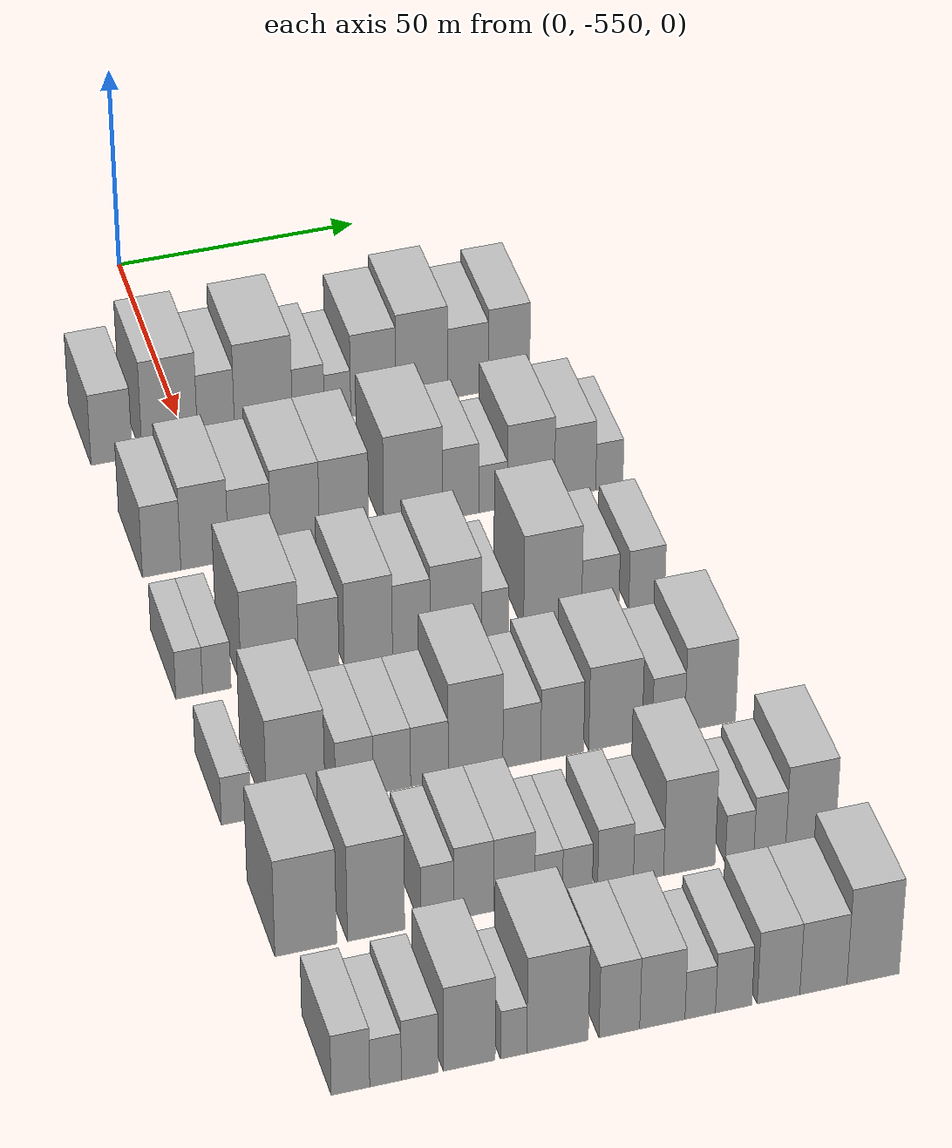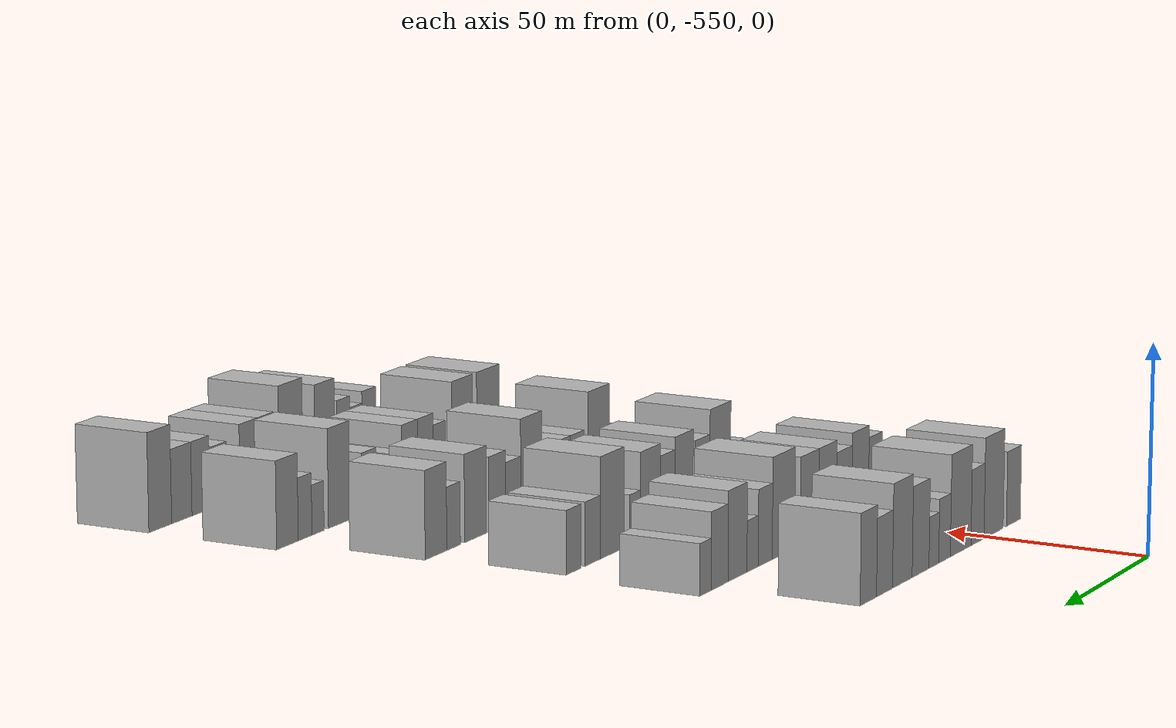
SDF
<sdf version="1.6">
 <world name="default">
  <model name="building_1">
   <static>1</static>
   <pose>50.0000 -565.8020 0 0.000000 0.000000 0.000000</pose>
   <link name="link">
    <pose>0 0 9.00 0 0 0</pose>
    <collision name="collision"><geometry><box><size>20.0000 8.3960 18.0000</size></box></geometry></collision>
    <visual name="visual">
     <cast_shadows>0</cast_shadows>
     <geometry><box><size>20.0000 8.3960 18.0000</size></box></geometry>
     <material>
      <script>
       <uri>model://HANNAS_wall/materials/scripts</uri>
       <uri>model://HANNAS_wall/materials/textures</uri>
       <name>vrc/HANNAS_wall</name>
      </script>
     </material>
    </visual>
   </link>
  </model>
  <model name="building_2">
   <static>1</static>
   <pose>50.0000 -553.9148 0 0.000000 0.000000 0.000000</pose>
   <link name="link">
    <pose>0 0 12.00 0 0 0</pose>
    <collision name="collision"><geometry><box><size>20.0000 11.3786 24.0000</size></box></geometry></collision>
    <visual name="visual">
     <cast_shadows>0</cast_shadows>
     <geometry><box><size>20.0000 11.3786 24.0000</size></box></geometry>
     <material>
      <script>
       <uri>model://HANNAS_wall/materials/scripts</uri>
       <uri>model://HANNAS_wall/materials/textures</uri>
       <name>vrc/HANNAS_wall</name>
      </script>
     </material>
    </visual>
   </link>
  </model>
  <model name="building_3">
   <static>1</static>
   <pose>50.0000 -544.4185 0 0.000000 0.000000 0.000000</pose>
   <link name="link">
    <pose>0 0 9.00 0 0 0</pose>
    <collision name="collision"><geometry><box><size>20.0000 7.6140 18.0000</size></box></geometry></collision>
    <visual name="visual">
     <cast_shadows>0</cast_shadows>
     <geometry><box><size>20.0000 7.6140 18.0000</size></box></geometry>
     <material>
      <script>
       <uri>model://HANNAS_wall/materials/scripts</uri>
       <uri>model://HANNAS_wall/materials/textures</uri>
       <name>vrc/HANNAS_wall</name>
      </script>
     </material>
    </visual>
   </link>
  </model>
  <model name="building_4">
   <static>1</static>
   <pose>50.0000 -534.6611 0 0.000000 0.000000 0.000000</pose>
   <link name="link">
    <pose>0 0 12.00 0 0 0</pose>
    <collision name="collision"><geometry><box><size>20.0000 11.9007 24.0000</size></box></geometry></collision>
    <visual name="visual">
     <cast_shadows>0</cast_shadows>
     <geometry><box><size>20.0000 11.9007 24.0000</size></box></geometry>
     <material>
      <script>
       <uri>model://HANNAS_wall/materials/scripts</uri>
       <uri>model://HANNAS_wall/materials/textures</uri>
       <name>vrc/HANNAS_wall</name>
      </script>
     </material>
    </visual>
   </link>
  </model>
  <model name="building_5">
   <static>1</static>
   <pose>50.0000 -525.4273 0 0.000000 0.000000 0.000000</pose>
   <link name="link">
    <pose>0 0 7.50 0 0 0</pose>
    <collision name="collision"><geometry><box><size>20.0000 6.5668 15.0000</size></box></geometry></collision>
    <visual name="visual">
     <cast_shadows>0</cast_shadows>
     <geometry><box><size>20.0000 6.5668 15.0000</size></box></geometry>
     <material>
      <script>
       <uri>model://HANNAS_wall/materials/scripts</uri>
       <uri>model://HANNAS_wall/materials/textures</uri>
       <name>vrc/HANNAS_wall</name>
      </script>
     </material>
    </visual>
   </link>
  </model>
  <model name="building_6">
   <static>1</static>
   <pose>50.0000 -519.4033 0 0.000000 0.000000 0.000000</pose>
   <link name="link">
    <pose>0 0 6.00 0 0 0</pose>
    <collision name="collision"><geometry><box><size>20.0000 5.4813 12.0000</size></box></geometry></collision>
    <visual name="visual">
     <cast_shadows>0</cast_shadows>
     <geometry><box><size>20.0000 5.4813 12.0000</size></box></geometry>
     <material>
      <script>
       <uri>model://HANNAS_wall/materials/scripts</uri>
       <uri>model://HANNAS_wall/materials/textures</uri>
       <name>vrc/HANNAS_wall</name>
      </script>
     </material>
    </visual>
   </link>
  </model>
  <model name="building_7">
   <static>1</static>
   <pose>50.0000 -511.9810 0 0.000000 0.000000 0.000000</pose>
   <link name="link">
    <pose>0 0 10.50 0 0 0</pose>
    <collision name="collision"><geometry><box><size>20.0000 9.3633 21.0000</size></box></geometry></collision>
    <visual name="visual">
     <cast_shadows>0</cast_shadows>
     <geometry><box><size>20.0000 9.3633 21.0000</size></box></geometry>
     <material>
      <script>
       <uri>model://HANNAS_wall/materials/scripts</uri>
       <uri>model://HANNAS_wall/materials/textures</uri>
       <name>vrc/HANNAS_wall</name>
      </script>
     </material>
    </visual>
   </link>
  </model>
  <model name="building_8">
   <static>1</static>
   <pose>50.0000 -501.9242 0 0.000000 0.000000 0.000000</pose>
   <link name="link">
    <pose>0 0 12.00 0 0 0</pose>
    <collision name="collision"><geometry><box><size>20.0000 10.7504 24.0000</size></box></geometry></collision>
    <visual name="visual">
     <cast_shadows>0</cast_shadows>
     <geometry><box><size>20.0000 10.7504 24.0000</size></box></geometry>
     <material>
      <script>
       <uri>model://HANNAS_wall/materials/scripts</uri>
       <uri>model://HANNAS_wall/materials/textures</uri>
       <name>vrc/HANNAS_wall</name>
      </script>
     </material>
    </visual>
   </link>
  </model>
  <model name="building_9">
   <static>1</static>
   <pose>50.0000 -492.2639 0 0.000000 0.000000 0.000000</pose>
   <link name="link">
    <pose>0 0 9.00 0 0 0</pose>
    <collision name="collision"><geometry><box><size>20.0000 8.5702 18.0000</size></box></geometry></collision>
    <visual name="visual">
     <cast_shadows>0</cast_shadows>
     <geometry><box><size>20.0000 8.5702 18.0000</size></box></geometry>
     <material>
      <script>
       <uri>model://HANNAS_wall/materials/scripts</uri>
       <uri>model://HANNAS_wall/materials/textures</uri>
       <name>vrc/HANNAS_wall</name>
      </script>
     </material>
    </visual>
   </link>
  </model>
  <model name="building_10">
   <static>1</static>
   <pose>50.0000 -483.6536 0 0.000000 0.000000 0.000000</pose>
   <link name="link">
    <pose>0 0 10.50 0 0 0</pose>
    <collision name="collision"><geometry><box><size>20.0000 8.6506 21.0000</size></box></geometry></collision>
    <visual name="visual">
     <cast_shadows>0</cast_shadows>
     <geometry><box><size>20.0000 8.6506 21.0000</size></box></geometry>
     <material>
      <script>
       <uri>model://HANNAS_wall/materials/scripts</uri>
       <uri>model://HANNAS_wall/materials/textures</uri>
       <name>vrc/HANNAS_wall</name>
      </script>
     </material>
    </visual>
   </link>
  </model>
  <model name="building_125">
   <static>1</static>
   <pose>85.0000 -564.1710 0 0.000000 0.000000 0.000000</pose>
   <link name="link">
    <pose>0 0 9.00 0 0 0</pose>
    <collision name="collision"><geometry><box><size>20.0000 7.6581 18.0000</size></box></geometry></collision>
    <visual name="visual">
     <cast_shadows>0</cast_shadows>
     <geometry><box><size>20.0000 7.6581 18.0000</size></box></geometry>
     <material>
      <script>
       <uri>model://HANNAS_wall/materials/scripts</uri>
       <uri>model://HANNAS_wall/materials/textures</uri>
       <name>vrc/HANNAS_wall</name>
      </script>
     </material>
    </visual>
   </link>
  </model>
  <model name="building_126">
   <static>1</static>
   <pose>85.0000 -555.5886 0 0.000000 0.000000 0.000000</pose>
   <link name="link">
    <pose>0 0 10.50 0 0 0</pose>
    <collision name="collision"><geometry><box><size>20.0000 9.5065 21.0000</size></box></geometry></collision>
    <visual name="visual">
     <cast_shadows>0</cast_shadows>
     <geometry><box><size>20.0000 9.5065 21.0000</size></box></geometry>
     <material>
      <script>
       <uri>model://HANNAS_wall/materials/scripts</uri>
       <uri>model://HANNAS_wall/materials/textures</uri>
       <name>vrc/HANNAS_wall</name>
      </script>
     </material>
    </visual>
   </link>
  </model>
  <model name="building_127">
   <static>1</static>
   <pose>85.0000 -546.5594 0 0.000000 0.000000 0.000000</pose>
   <link name="link">
    <pose>0 0 9.00 0 0 0</pose>
    <collision name="collision"><geometry><box><size>20.0000 8.5520 18.0000</size></box></geometry></collision>
    <visual name="visual">
     <cast_shadows>0</cast_shadows>
     <geometry><box><size>20.0000 8.5520 18.0000</size></box></geometry>
     <material>
      <script>
       <uri>model://HANNAS_wall/materials/scripts</uri>
       <uri>model://HANNAS_wall/materials/textures</uri>
       <name>vrc/HANNAS_wall</name>
      </script>
     </material>
    </visual>
   </link>
  </model>
  <model name="building_128">
   <static>1</static>
   <pose>85.0000 -537.4006 0 0.000000 0.000000 0.000000</pose>
   <link name="link">
    <pose>0 0 10.50 0 0 0</pose>
    <collision name="collision"><geometry><box><size>20.0000 9.7656 21.0000</size></box></geometry></collision>
    <visual name="visual">
     <cast_shadows>0</cast_shadows>
     <geometry><box><size>20.0000 9.7656 21.0000</size></box></geometry>
     <material>
      <script>
       <uri>model://HANNAS_wall/materials/scripts</uri>
       <uri>model://HANNAS_wall/materials/textures</uri>
       <name>vrc/HANNAS_wall</name>
      </script>
     </material>
    </visual>
   </link>
  </model>
  <model name="building_129">
   <static>1</static>
   <pose>85.0000 -527.5394 0 0.000000 0.000000 0.000000</pose>
   <link name="link">
    <pose>0 0 10.50 0 0 0</pose>
    <collision name="collision"><geometry><box><size>20.0000 9.9567 21.0000</size></box></geometry></collision>
    <visual name="visual">
     <cast_shadows>0</cast_shadows>
     <geometry><box><size>20.0000 9.9567 21.0000</size></box></geometry>
     <material>
      <script>
       <uri>model://HANNAS_wall/materials/scripts</uri>
       <uri>model://HANNAS_wall/materials/textures</uri>
       <name>vrc/HANNAS_wall</name>
      </script>
     </material>
    </visual>
   </link>
  </model>
  <model name="building_130">
   <static>1</static>
   <pose>85.0000 -513.5784 0 0.000000 0.000000 0.000000</pose>
   <link name="link">
    <pose>0 0 12.00 0 0 0</pose>
    <collision name="collision"><geometry><box><size>20.0000 11.9653 24.0000</size></box></geometry></collision>
    <visual name="visual">
     <cast_shadows>0</cast_shadows>
     <geometry><box><size>20.0000 11.9653 24.0000</size></box></geometry>
     <material>
      <script>
       <uri>model://HANNAS_wall/materials/scripts</uri>
       <uri>model://HANNAS_wall/materials/textures</uri>
       <name>vrc/HANNAS_wall</name>
      </script>
     </material>
    </visual>
   </link>
  </model>
  <model name="building_131">
   <static>1</static>
   <pose>85.0000 -503.9289 0 0.000000 0.000000 0.000000</pose>
   <link name="link">
    <pose>0 0 9.00 0 0 0</pose>
    <collision name="collision"><geometry><box><size>20.0000 7.3338 18.0000</size></box></geometry></collision>
    <visual name="visual">
     <cast_shadows>0</cast_shadows>
     <geometry><box><size>20.0000 7.3338 18.0000</size></box></geometry>
     <material>
      <script>
       <uri>model://HANNAS_wall/materials/scripts</uri>
       <uri>model://HANNAS_wall/materials/textures</uri>
       <name>vrc/HANNAS_wall</name>
      </script>
     </material>
    </visual>
   </link>
  </model>
  <model name="building_132">
   <static>1</static>
   <pose>85.0000 -497.3384 0 0.000000 0.000000 0.000000</pose>
   <link name="link">
    <pose>0 0 6.00 0 0 0</pose>
    <collision name="collision"><geometry><box><size>20.0000 5.8474 12.0000</size></box></geometry></collision>
    <visual name="visual">
     <cast_shadows>0</cast_shadows>
     <geometry><box><size>20.0000 5.8474 12.0000</size></box></geometry>
     <material>
      <script>
       <uri>model://HANNAS_wall/materials/scripts</uri>
       <uri>model://HANNAS_wall/materials/textures</uri>
       <name>vrc/HANNAS_wall</name>
      </script>
     </material>
    </visual>
   </link>
  </model>
  <model name="building_133">
   <static>1</static>
   <pose>85.0000 -489.5734 0 0.000000 0.000000 0.000000</pose>
   <link name="link">
    <pose>0 0 10.50 0 0 0</pose>
    <collision name="collision"><geometry><box><size>20.0000 9.6825 21.0000</size></box></geometry></collision>
    <visual name="visual">
     <cast_shadows>0</cast_shadows>
     <geometry><box><size>20.0000 9.6825 21.0000</size></box></geometry>
     <material>
      <script>
       <uri>model://HANNAS_wall/materials/scripts</uri>
       <uri>model://HANNAS_wall/materials/textures</uri>
       <name>vrc/HANNAS_wall</name>
      </script>
     </material>
    </visual>
   </link>
  </model>
  <model name="building_134">
   <static>1</static>
   <pose>85.0000 -480.4930 0 0.000000 0.000000 0.000000</pose>
   <link name="link">
    <pose>0 0 9.00 0 0 0</pose>
    <collision name="collision"><geometry><box><size>20.0000 8.4784 18.0000</size></box></geometry></collision>
    <visual name="visual">
     <cast_shadows>0</cast_shadows>
     <geometry><box><size>20.0000 8.4784 18.0000</size></box></geometry>
     <material>
      <script>
       <uri>model://HANNAS_wall/materials/scripts</uri>
       <uri>model://HANNAS_wall/materials/textures</uri>
       <name>vrc/HANNAS_wall</name>
      </script>
     </material>
    </visual>
   </link>
  </model>
  <model name="building_135">
   <static>1</static>
   <pose>85.0000 -473.4483 0 0.000000 0.000000 0.000000</pose>
   <link name="link">
    <pose>0 0 6.00 0 0 0</pose>
    <collision name="collision"><geometry><box><size>20.0000 5.6111 12.0000</size></box></geometry></collision>
    <visual name="visual">
     <cast_shadows>0</cast_shadows>
     <geometry><box><size>20.0000 5.6111 12.0000</size></box></geometry>
     <material>
      <script>
       <uri>model://HANNAS_wall/materials/scripts</uri>
       <uri>model://HANNAS_wall/materials/textures</uri>
       <name>vrc/HANNAS_wall</name>
      </script>
     </material>
    </visual>
   </link>
  </model>
  <model name="building_252">
   <static>1</static>
   <pose>120.0000 -567.3957 0 0.000000 0.000000 0.000000</pose>
   <link name="link">
    <pose>0 0 6.00 0 0 0</pose>
    <collision name="collision"><geometry><box><size>20.0000 5.2086 12.0000</size></box></geometry></collision>
    <visual name="visual">
     <cast_shadows>0</cast_shadows>
     <geometry><box><size>20.0000 5.2086 12.0000</size></box></geometry>
     <material>
      <script>
       <uri>model://HANNAS_wall/materials/scripts</uri>
       <uri>model://HANNAS_wall/materials/textures</uri>
       <name>vrc/HANNAS_wall</name>
      </script>
     </material>
    </visual>
   </link>
  </model>
  <model name="building_253">
   <static>1</static>
   <pose>120.0000 -562.0153 0 0.000000 0.000000 0.000000</pose>
   <link name="link">
    <pose>0 0 6.00 0 0 0</pose>
    <collision name="collision"><geometry><box><size>20.0000 5.5522 12.0000</size></box></geometry></collision>
    <visual name="visual">
     <cast_shadows>0</cast_shadows>
     <geometry><box><size>20.0000 5.5522 12.0000</size></box></geometry>
     <material>
      <script>
       <uri>model://HANNAS_wall/materials/scripts</uri>
       <uri>model://HANNAS_wall/materials/textures</uri>
       <name>vrc/HANNAS_wall</name>
      </script>
     </material>
    </visual>
   </link>
  </model>
  <model name="building_254">
   <static>1</static>
   <pose>120.0000 -551.6204 0 0.000000 0.000000 0.000000</pose>
   <link name="link">
    <pose>0 0 12.00 0 0 0</pose>
    <collision name="collision"><geometry><box><size>20.0000 11.2376 24.0000</size></box></geometry></collision>
    <visual name="visual">
     <cast_shadows>0</cast_shadows>
     <geometry><box><size>20.0000 11.2376 24.0000</size></box></geometry>
     <material>
      <script>
       <uri>model://HANNAS_wall/materials/scripts</uri>
       <uri>model://HANNAS_wall/materials/textures</uri>
       <name>vrc/HANNAS_wall</name>
      </script>
     </material>
    </visual>
   </link>
  </model>
  <model name="building_255">
   <static>1</static>
   <pose>120.0000 -542.0420 0 0.000000 0.000000 0.000000</pose>
   <link name="link">
    <pose>0 0 9.00 0 0 0</pose>
    <collision name="collision"><geometry><box><size>20.0000 7.9191 18.0000</size></box></geometry></collision>
    <visual name="visual">
     <cast_shadows>0</cast_shadows>
     <geometry><box><size>20.0000 7.9191 18.0000</size></box></geometry>
     <material>
      <script>
       <uri>model://HANNAS_wall/materials/scripts</uri>
       <uri>model://HANNAS_wall/materials/textures</uri>
       <name>vrc/HANNAS_wall</name>
      </script>
     </material>
    </visual>
   </link>
  </model>
  <model name="building_256">
   <static>1</static>
   <pose>120.0000 -532.3242 0 0.000000 0.000000 0.000000</pose>
   <link name="link">
    <pose>0 0 10.50 0 0 0</pose>
    <collision name="collision"><geometry><box><size>20.0000 9.5166 21.0000</size></box></geometry></collision>
    <visual name="visual">
     <cast_shadows>0</cast_shadows>
     <geometry><box><size>20.0000 9.5166 21.0000</size></box></geometry>
     <material>
      <script>
       <uri>model://HANNAS_wall/materials/scripts</uri>
       <uri>model://HANNAS_wall/materials/textures</uri>
       <name>vrc/HANNAS_wall</name>
      </script>
     </material>
    </visual>
   </link>
  </model>
  <model name="building_257">
   <static>1</static>
   <pose>120.0000 -523.8500 0 0.000000 0.000000 0.000000</pose>
   <link name="link">
    <pose>0 0 9.00 0 0 0</pose>
    <collision name="collision"><geometry><box><size>20.0000 7.4318 18.0000</size></box></geometry></collision>
    <visual name="visual">
     <cast_shadows>0</cast_shadows>
     <geometry><box><size>20.0000 7.4318 18.0000</size></box></geometry>
     <material>
      <script>
       <uri>model://HANNAS_wall/materials/scripts</uri>
       <uri>model://HANNAS_wall/materials/textures</uri>
       <name>vrc/HANNAS_wall</name>
      </script>
     </material>
    </visual>
   </link>
  </model>
  <model name="building_258">
   <static>1</static>
   <pose>120.0000 -515.0436 0 0.000000 0.000000 0.000000</pose>
   <link name="link">
    <pose>0 0 10.50 0 0 0</pose>
    <collision name="collision"><geometry><box><size>20.0000 10.1809 21.0000</size></box></geometry></collision>
    <visual name="visual">
     <cast_shadows>0</cast_shadows>
     <geometry><box><size>20.0000 10.1809 21.0000</size></box></geometry>
     <material>
      <script>
       <uri>model://HANNAS_wall/materials/scripts</uri>
       <uri>model://HANNAS_wall/materials/textures</uri>
       <name>vrc/HANNAS_wall</name>
      </script>
     </material>
    </visual>
   </link>
  </model>
  <model name="building_259">
   <static>1</static>
   <pose>120.0000 -507.2481 0 0.000000 0.000000 0.000000</pose>
   <link name="link">
    <pose>0 0 6.00 0 0 0</pose>
    <collision name="collision"><geometry><box><size>20.0000 5.4101 12.0000</size></box></geometry></collision>
    <visual name="visual">
     <cast_shadows>0</cast_shadows>
     <geometry><box><size>20.0000 5.4101 12.0000</size></box></geometry>
     <material>
      <script>
       <uri>model://HANNAS_wall/materials/scripts</uri>
       <uri>model://HANNAS_wall/materials/textures</uri>
       <name>vrc/HANNAS_wall</name>
      </script>
     </material>
    </visual>
   </link>
  </model>
  <model name="building_260">
   <static>1</static>
   <pose>120.0000 -495.7571 0 0.000000 0.000000 0.000000</pose>
   <link name="link">
    <pose>0 0 12.00 0 0 0</pose>
    <collision name="collision"><geometry><box><size>20.0000 11.5719 24.0000</size></box></geometry></collision>
    <visual name="visual">
     <cast_shadows>0</cast_shadows>
     <geometry><box><size>20.0000 11.5719 24.0000</size></box></geometry>
     <material>
      <script>
       <uri>model://HANNAS_wall/materials/scripts</uri>
       <uri>model://HANNAS_wall/materials/textures</uri>
       <name>vrc/HANNAS_wall</name>
      </script>
     </material>
    </visual>
   </link>
  </model>
  <model name="building_261">
   <static>1</static>
   <pose>120.0000 -486.2264 0 0.000000 0.000000 0.000000</pose>
   <link name="link">
    <pose>0 0 7.50 0 0 0</pose>
    <collision name="collision"><geometry><box><size>20.0000 7.4894 15.0000</size></box></geometry></collision>
    <visual name="visual">
     <cast_shadows>0</cast_shadows>
     <geometry><box><size>20.0000 7.4894 15.0000</size></box></geometry>
     <material>
      <script>
       <uri>model://HANNAS_wall/materials/scripts</uri>
       <uri>model://HANNAS_wall/materials/textures</uri>
       <name>vrc/HANNAS_wall</name>
      </script>
     </material>
    </visual>
   </link>
  </model>
  <model name="building_262">
   <static>1</static>
   <pose>120.0000 -476.8883 0 0.000000 0.000000 0.000000</pose>
   <link name="link">
    <pose>0 0 7.50 0 0 0</pose>
    <collision name="collision"><geometry><box><size>20.0000 7.1868 15.0000</size></box></geometry></collision>
    <visual name="visual">
     <cast_shadows>0</cast_shadows>
     <geometry><box><size>20.0000 7.1868 15.0000</size></box></geometry>
     <material>
      <script>
       <uri>model://HANNAS_wall/materials/scripts</uri>
       <uri>model://HANNAS_wall/materials/textures</uri>
       <name>vrc/HANNAS_wall</name>
      </script>
     </material>
    </visual>
   </link>
  </model>
  <model name="building_374">
   <static>1</static>
   <pose>155.0000 -567.1918 0 0.000000 0.000000 0.000000</pose>
   <link name="link">
    <pose>0 0 6.00 0 0 0</pose>
    <collision name="collision"><geometry><box><size>20.0000 5.6164 12.0000</size></box></geometry></collision>
    <visual name="visual">
     <cast_shadows>0</cast_shadows>
     <geometry><box><size>20.0000 5.6164 12.0000</size></box></geometry>
     <material>
      <script>
       <uri>model://HANNAS_wall/materials/scripts</uri>
       <uri>model://HANNAS_wall/materials/textures</uri>
       <name>vrc/HANNAS_wall</name>
      </script>
     </material>
    </visual>
   </link>
  </model>
  <model name="building_375">
   <static>1</static>
   <pose>155.0000 -555.8159 0 0.000000 0.000000 0.000000</pose>
   <link name="link">
    <pose>0 0 12.00 0 0 0</pose>
    <collision name="collision"><geometry><box><size>20.0000 11.1355 24.0000</size></box></geometry></collision>
    <visual name="visual">
     <cast_shadows>0</cast_shadows>
     <geometry><box><size>20.0000 11.1355 24.0000</size></box></geometry>
     <material>
      <script>
       <uri>model://HANNAS_wall/materials/scripts</uri>
       <uri>model://HANNAS_wall/materials/textures</uri>
       <name>vrc/HANNAS_wall</name>
      </script>
     </material>
    </visual>
   </link>
  </model>
  <model name="building_376">
   <static>1</static>
   <pose>155.0000 -544.6604 0 0.000000 0.000000 0.000000</pose>
   <link name="link">
    <pose>0 0 7.50 0 0 0</pose>
    <collision name="collision"><geometry><box><size>20.0000 7.1755 15.0000</size></box></geometry></collision>
    <visual name="visual">
     <cast_shadows>0</cast_shadows>
     <geometry><box><size>20.0000 7.1755 15.0000</size></box></geometry>
     <material>
      <script>
       <uri>model://HANNAS_wall/materials/scripts</uri>
       <uri>model://HANNAS_wall/materials/textures</uri>
       <name>vrc/HANNAS_wall</name>
      </script>
     </material>
    </visual>
   </link>
  </model>
  <model name="building_377">
   <static>1</static>
   <pose>155.0000 -537.4642 0 0.000000 0.000000 0.000000</pose>
   <link name="link">
    <pose>0 0 7.50 0 0 0</pose>
    <collision name="collision"><geometry><box><size>20.0000 7.2169 15.0000</size></box></geometry></collision>
    <visual name="visual">
     <cast_shadows>0</cast_shadows>
     <geometry><box><size>20.0000 7.2169 15.0000</size></box></geometry>
     <material>
      <script>
       <uri>model://HANNAS_wall/materials/scripts</uri>
       <uri>model://HANNAS_wall/materials/textures</uri>
       <name>vrc/HANNAS_wall</name>
      </script>
     </material>
    </visual>
   </link>
  </model>
  <model name="building_378">
   <static>1</static>
   <pose>155.0000 -530.2417 0 0.000000 0.000000 0.000000</pose>
   <link name="link">
    <pose>0 0 7.50 0 0 0</pose>
    <collision name="collision"><geometry><box><size>20.0000 7.2280 15.0000</size></box></geometry></collision>
    <visual name="visual">
     <cast_shadows>0</cast_shadows>
     <geometry><box><size>20.0000 7.2280 15.0000</size></box></geometry>
     <material>
      <script>
       <uri>model://HANNAS_wall/materials/scripts</uri>
       <uri>model://HANNAS_wall/materials/textures</uri>
       <name>vrc/HANNAS_wall</name>
      </script>
     </material>
    </visual>
   </link>
  </model>
  <model name="building_379">
   <static>1</static>
   <pose>155.0000 -521.3453 0 0.000000 0.000000 0.000000</pose>
   <link name="link">
    <pose>0 0 12.00 0 0 0</pose>
    <collision name="collision"><geometry><box><size>20.0000 10.5647 24.0000</size></box></geometry></collision>
    <visual name="visual">
     <cast_shadows>0</cast_shadows>
     <geometry><box><size>20.0000 10.5647 24.0000</size></box></geometry>
     <material>
      <script>
       <uri>model://HANNAS_wall/materials/scripts</uri>
       <uri>model://HANNAS_wall/materials/textures</uri>
       <name>vrc/HANNAS_wall</name>
      </script>
     </material>
    </visual>
   </link>
  </model>
  <model name="building_380">
   <static>1</static>
   <pose>155.0000 -512.3873 0 0.000000 0.000000 0.000000</pose>
   <link name="link">
    <pose>0 0 7.50 0 0 0</pose>
    <collision name="collision"><geometry><box><size>20.0000 7.3513 15.0000</size></box></geometry></collision>
    <visual name="visual">
     <cast_shadows>0</cast_shadows>
     <geometry><box><size>20.0000 7.3513 15.0000</size></box></geometry>
     <material>
      <script>
       <uri>model://HANNAS_wall/materials/scripts</uri>
       <uri>model://HANNAS_wall/materials/textures</uri>
       <name>vrc/HANNAS_wall</name>
      </script>
     </material>
    </visual>
   </link>
  </model>
  <model name="building_381">
   <static>1</static>
   <pose>155.0000 -504.5391 0 0.000000 0.000000 0.000000</pose>
   <link name="link">
    <pose>0 0 9.00 0 0 0</pose>
    <collision name="collision"><geometry><box><size>20.0000 8.3450 18.0000</size></box></geometry></collision>
    <visual name="visual">
     <cast_shadows>0</cast_shadows>
     <geometry><box><size>20.0000 8.3450 18.0000</size></box></geometry>
     <material>
      <script>
       <uri>model://HANNAS_wall/materials/scripts</uri>
       <uri>model://HANNAS_wall/materials/textures</uri>
       <name>vrc/HANNAS_wall</name>
      </script>
     </material>
    </visual>
   </link>
  </model>
  <model name="building_382">
   <static>1</static>
   <pose>155.0000 -494.1483 0 0.000000 0.000000 0.000000</pose>
   <link name="link">
    <pose>0 0 10.50 0 0 0</pose>
    <collision name="collision"><geometry><box><size>20.0000 10.4366 21.0000</size></box></geometry></collision>
    <visual name="visual">
     <cast_shadows>0</cast_shadows>
     <geometry><box><size>20.0000 10.4366 21.0000</size></box></geometry>
     <material>
      <script>
       <uri>model://HANNAS_wall/materials/scripts</uri>
       <uri>model://HANNAS_wall/materials/textures</uri>
       <name>vrc/HANNAS_wall</name>
      </script>
     </material>
    </visual>
   </link>
  </model>
  <model name="building_383">
   <static>1</static>
   <pose>155.0000 -483.7432 0 0.000000 0.000000 0.000000</pose>
   <link name="link">
    <pose>0 0 7.50 0 0 0</pose>
    <collision name="collision"><geometry><box><size>20.0000 6.3737 15.0000</size></box></geometry></collision>
    <visual name="visual">
     <cast_shadows>0</cast_shadows>
     <geometry><box><size>20.0000 6.3737 15.0000</size></box></geometry>
     <material>
      <script>
       <uri>model://HANNAS_wall/materials/scripts</uri>
       <uri>model://HANNAS_wall/materials/textures</uri>
       <name>vrc/HANNAS_wall</name>
      </script>
     </material>
    </visual>
   </link>
  </model>
  <model name="building_384">
   <static>1</static>
   <pose>155.0000 -475.5431 0 0.000000 0.000000 0.000000</pose>
   <link name="link">
    <pose>0 0 10.50 0 0 0</pose>
    <collision name="collision"><geometry><box><size>20.0000 10.0265 21.0000</size></box></geometry></collision>
    <visual name="visual">
     <cast_shadows>0</cast_shadows>
     <geometry><box><size>20.0000 10.0265 21.0000</size></box></geometry>
     <material>
      <script>
       <uri>model://HANNAS_wall/materials/scripts</uri>
       <uri>model://HANNAS_wall/materials/textures</uri>
       <name>vrc/HANNAS_wall</name>
      </script>
     </material>
    </visual>
   </link>
  </model>
  <model name="building_494">
   <static>1</static>
   <pose>190.0000 -563.2613 0 0.000000 0.000000 0.000000</pose>
   <link name="link">
    <pose>0 0 12.00 0 0 0</pose>
    <collision name="collision"><geometry><box><size>20.0000 11.4773 24.0000</size></box></geometry></collision>
    <visual name="visual">
     <cast_shadows>0</cast_shadows>
     <geometry><box><size>20.0000 11.4773 24.0000</size></box></geometry>
     <material>
      <script>
       <uri>model://HANNAS_wall/materials/scripts</uri>
       <uri>model://HANNAS_wall/materials/textures</uri>
       <name>vrc/HANNAS_wall</name>
      </script>
     </material>
    </visual>
   </link>
  </model>
  <model name="building_495">
   <static>1</static>
   <pose>190.0000 -550.1931 0 0.000000 0.000000 0.000000</pose>
   <link name="link">
    <pose>0 0 12.00 0 0 0</pose>
    <collision name="collision"><geometry><box><size>20.0000 10.6591 24.0000</size></box></geometry></collision>
    <visual name="visual">
     <cast_shadows>0</cast_shadows>
     <geometry><box><size>20.0000 10.6591 24.0000</size></box></geometry>
     <material>
      <script>
       <uri>model://HANNAS_wall/materials/scripts</uri>
       <uri>model://HANNAS_wall/materials/textures</uri>
       <name>vrc/HANNAS_wall</name>
      </script>
     </material>
    </visual>
   </link>
  </model>
  <model name="building_496">
   <static>1</static>
   <pose>190.0000 -538.7928 0 0.000000 0.000000 0.000000</pose>
   <link name="link">
    <pose>0 0 7.50 0 0 0</pose>
    <collision name="collision"><geometry><box><size>20.0000 6.1414 15.0000</size></box></geometry></collision>
    <visual name="visual">
     <cast_shadows>0</cast_shadows>
     <geometry><box><size>20.0000 6.1414 15.0000</size></box></geometry>
     <material>
      <script>
       <uri>model://HANNAS_wall/materials/scripts</uri>
       <uri>model://HANNAS_wall/materials/textures</uri>
       <name>vrc/HANNAS_wall</name>
      </script>
     </material>
    </visual>
   </link>
  </model>
  <model name="building_497">
   <static>1</static>
   <pose>190.0000 -531.9369 0 0.000000 0.000000 0.000000</pose>
   <link name="link">
    <pose>0 0 9.00 0 0 0</pose>
    <collision name="collision"><geometry><box><size>20.0000 7.5705 18.0000</size></box></geometry></collision>
    <visual name="visual">
     <cast_shadows>0</cast_shadows>
     <geometry><box><size>20.0000 7.5705 18.0000</size></box></geometry>
     <material>
      <script>
       <uri>model://HANNAS_wall/materials/scripts</uri>
       <uri>model://HANNAS_wall/materials/textures</uri>
       <name>vrc/HANNAS_wall</name>
      </script>
     </material>
    </visual>
   </link>
  </model>
  <model name="building_498">
   <static>1</static>
   <pose>190.0000 -524.2915 0 0.000000 0.000000 0.000000</pose>
   <link name="link">
    <pose>0 0 9.00 0 0 0</pose>
    <collision name="collision"><geometry><box><size>20.0000 7.7203 18.0000</size></box></geometry></collision>
    <visual name="visual">
     <cast_shadows>0</cast_shadows>
     <geometry><box><size>20.0000 7.7203 18.0000</size></box></geometry>
     <material>
      <script>
       <uri>model://HANNAS_wall/materials/scripts</uri>
       <uri>model://HANNAS_wall/materials/textures</uri>
       <name>vrc/HANNAS_wall</name>
      </script>
     </material>
    </visual>
   </link>
  </model>
  <model name="building_499">
   <static>1</static>
   <pose>190.0000 -517.7955 0 0.000000 0.000000 0.000000</pose>
   <link name="link">
    <pose>0 0 6.00 0 0 0</pose>
    <collision name="collision"><geometry><box><size>20.0000 5.2717 12.0000</size></box></geometry></collision>
    <visual name="visual">
     <cast_shadows>0</cast_shadows>
     <geometry><box><size>20.0000 5.2717 12.0000</size></box></geometry>
     <material>
      <script>
       <uri>model://HANNAS_wall/materials/scripts</uri>
       <uri>model://HANNAS_wall/materials/textures</uri>
       <name>vrc/HANNAS_wall</name>
      </script>
     </material>
    </visual>
   </link>
  </model>
  <model name="building_500">
   <static>1</static>
   <pose>190.0000 -512.3334 0 0.000000 0.000000 0.000000</pose>
   <link name="link">
    <pose>0 0 6.00 0 0 0</pose>
    <collision name="collision"><geometry><box><size>20.0000 5.6525 12.0000</size></box></geometry></collision>
    <visual name="visual">
     <cast_shadows>0</cast_shadows>
     <geometry><box><size>20.0000 5.6525 12.0000</size></box></geometry>
     <material>
      <script>
       <uri>model://HANNAS_wall/materials/scripts</uri>
       <uri>model://HANNAS_wall/materials/textures</uri>
       <name>vrc/HANNAS_wall</name>
      </script>
     </material>
    </visual>
   </link>
  </model>
  <model name="building_501">
   <static>1</static>
   <pose>190.0000 -505.1081 0 0.000000 0.000000 0.000000</pose>
   <link name="link">
    <pose>0 0 7.50 0 0 0</pose>
    <collision name="collision"><geometry><box><size>20.0000 6.7981 15.0000</size></box></geometry></collision>
    <visual name="visual">
     <cast_shadows>0</cast_shadows>
     <geometry><box><size>20.0000 6.7981 15.0000</size></box></geometry>
     <material>
      <script>
       <uri>model://HANNAS_wall/materials/scripts</uri>
       <uri>model://HANNAS_wall/materials/textures</uri>
       <name>vrc/HANNAS_wall</name>
      </script>
     </material>
    </visual>
   </link>
  </model>
  <model name="building_502">
   <static>1</static>
   <pose>190.0000 -498.8279 0 0.000000 0.000000 0.000000</pose>
   <link name="link">
    <pose>0 0 6.00 0 0 0</pose>
    <collision name="collision"><geometry><box><size>20.0000 5.7624 12.0000</size></box></geometry></collision>
    <visual name="visual">
     <cast_shadows>0</cast_shadows>
     <geometry><box><size>20.0000 5.7624 12.0000</size></box></geometry>
     <material>
      <script>
       <uri>model://HANNAS_wall/materials/scripts</uri>
       <uri>model://HANNAS_wall/materials/textures</uri>
       <name>vrc/HANNAS_wall</name>
      </script>
     </material>
    </visual>
   </link>
  </model>
  <model name="building_503">
   <static>1</static>
   <pose>190.0000 -491.0320 0 0.000000 0.000000 0.000000</pose>
   <link name="link">
    <pose>0 0 12.00 0 0 0</pose>
    <collision name="collision"><geometry><box><size>20.0000 9.8293 24.0000</size></box></geometry></collision>
    <visual name="visual">
     <cast_shadows>0</cast_shadows>
     <geometry><box><size>20.0000 9.8293 24.0000</size></box></geometry>
     <material>
      <script>
       <uri>model://HANNAS_wall/materials/scripts</uri>
       <uri>model://HANNAS_wall/materials/textures</uri>
       <name>vrc/HANNAS_wall</name>
      </script>
     </material>
    </visual>
   </link>
  </model>
  <model name="building_504">
   <static>1</static>
   <pose>190.0000 -481.3809 0 0.000000 0.000000 0.000000</pose>
   <link name="link">
    <pose>0 0 6.00 0 0 0</pose>
    <collision name="collision"><geometry><box><size>20.0000 5.4730 12.0000</size></box></geometry></collision>
    <visual name="visual">
     <cast_shadows>0</cast_shadows>
     <geometry><box><size>20.0000 5.4730 12.0000</size></box></geometry>
     <material>
      <script>
       <uri>model://HANNAS_wall/materials/scripts</uri>
       <uri>model://HANNAS_wall/materials/textures</uri>
       <name>vrc/HANNAS_wall</name>
      </script>
     </material>
    </visual>
   </link>
  </model>
  <model name="building_505">
   <static>1</static>
   <pose>190.0000 -475.5806 0 0.000000 0.000000 0.000000</pose>
   <link name="link">
    <pose>0 0 7.50 0 0 0</pose>
    <collision name="collision"><geometry><box><size>20.0000 6.1277 15.0000</size></box></geometry></collision>
    <visual name="visual">
     <cast_shadows>0</cast_shadows>
     <geometry><box><size>20.0000 6.1277 15.0000</size></box></geometry>
     <material>
      <script>
       <uri>model://HANNAS_wall/materials/scripts</uri>
       <uri>model://HANNAS_wall/materials/textures</uri>
       <name>vrc/HANNAS_wall</name>
      </script>
     </material>
    </visual>
   </link>
  </model>
  <model name="building_506">
   <static>1</static>
   <pose>190.0000 -467.7268 0 0.000000 0.000000 0.000000</pose>
   <link name="link">
    <pose>0 0 10.50 0 0 0</pose>
    <collision name="collision"><geometry><box><size>20.0000 9.5800 21.0000</size></box></geometry></collision>
    <visual name="visual">
     <cast_shadows>0</cast_shadows>
     <geometry><box><size>20.0000 9.5800 21.0000</size></box></geometry>
     <material>
      <script>
       <uri>model://HANNAS_wall/materials/scripts</uri>
       <uri>model://HANNAS_wall/materials/textures</uri>
       <name>vrc/HANNAS_wall</name>
      </script>
     </material>
    </visual>
   </link>
  </model>
  <model name="building_622">
   <static>1</static>
   <pose>225.0000 -564.5189 0 0.000000 0.000000 0.000000</pose>
   <link name="link">
    <pose>0 0 7.50 0 0 0</pose>
    <collision name="collision"><geometry><box><size>20.0000 6.9621 15.0000</size></box></geometry></collision>
    <visual name="visual">
     <cast_shadows>0</cast_shadows>
     <geometry><box><size>20.0000 6.9621 15.0000</size></box></geometry>
     <material>
      <script>
       <uri>model://HANNAS_wall/materials/scripts</uri>
       <uri>model://HANNAS_wall/materials/textures</uri>
       <name>vrc/HANNAS_wall</name>
      </script>
     </material>
    </visual>
   </link>
  </model>
  <model name="building_623">
   <static>1</static>
   <pose>225.0000 -558.1711 0 0.000000 0.000000 0.000000</pose>
   <link name="link">
    <pose>0 0 6.00 0 0 0</pose>
    <collision name="collision"><geometry><box><size>20.0000 5.7335 12.0000</size></box></geometry></collision>
    <visual name="visual">
     <cast_shadows>0</cast_shadows>
     <geometry><box><size>20.0000 5.7335 12.0000</size></box></geometry>
     <material>
      <script>
       <uri>model://HANNAS_wall/materials/scripts</uri>
       <uri>model://HANNAS_wall/materials/textures</uri>
       <name>vrc/HANNAS_wall</name>
      </script>
     </material>
    </visual>
   </link>
  </model>
  <model name="building_624">
   <static>1</static>
   <pose>225.0000 -551.9794 0 0.000000 0.000000 0.000000</pose>
   <link name="link">
    <pose>0 0 7.50 0 0 0</pose>
    <collision name="collision"><geometry><box><size>20.0000 6.6500 15.0000</size></box></geometry></collision>
    <visual name="visual">
     <cast_shadows>0</cast_shadows>
     <geometry><box><size>20.0000 6.6500 15.0000</size></box></geometry>
     <material>
      <script>
       <uri>model://HANNAS_wall/materials/scripts</uri>
       <uri>model://HANNAS_wall/materials/textures</uri>
       <name>vrc/HANNAS_wall</name>
      </script>
     </material>
    </visual>
   </link>
  </model>
  <model name="building_625">
   <static>1</static>
   <pose>225.0000 -542.9315 0 0.000000 0.000000 0.000000</pose>
   <link name="link">
    <pose>0 0 10.50 0 0 0</pose>
    <collision name="collision"><geometry><box><size>20.0000 9.4458 21.0000</size></box></geometry></collision>
    <visual name="visual">
     <cast_shadows>0</cast_shadows>
     <geometry><box><size>20.0000 9.4458 21.0000</size></box></geometry>
     <material>
      <script>
       <uri>model://HANNAS_wall/materials/scripts</uri>
       <uri>model://HANNAS_wall/materials/textures</uri>
       <name>vrc/HANNAS_wall</name>
      </script>
     </material>
    </visual>
   </link>
  </model>
  <model name="building_626">
   <static>1</static>
   <pose>225.0000 -534.8058 0 0.000000 0.000000 0.000000</pose>
   <link name="link">
    <pose>0 0 6.00 0 0 0</pose>
    <collision name="collision"><geometry><box><size>20.0000 4.8057 12.0000</size></box></geometry></collision>
    <visual name="visual">
     <cast_shadows>0</cast_shadows>
     <geometry><box><size>20.0000 4.8057 12.0000</size></box></geometry>
     <material>
      <script>
       <uri>model://HANNAS_wall/materials/scripts</uri>
       <uri>model://HANNAS_wall/materials/textures</uri>
       <name>vrc/HANNAS_wall</name>
      </script>
     </material>
    </visual>
   </link>
  </model>
  <model name="building_627">
   <static>1</static>
   <pose>225.0000 -526.7570 0 0.000000 0.000000 0.000000</pose>
   <link name="link">
    <pose>0 0 12.00 0 0 0</pose>
    <collision name="collision"><geometry><box><size>20.0000 11.2919 24.0000</size></box></geometry></collision>
    <visual name="visual">
     <cast_shadows>0</cast_shadows>
     <geometry><box><size>20.0000 11.2919 24.0000</size></box></geometry>
     <material>
      <script>
       <uri>model://HANNAS_wall/materials/scripts</uri>
       <uri>model://HANNAS_wall/materials/textures</uri>
       <name>vrc/HANNAS_wall</name>
      </script>
     </material>
    </visual>
   </link>
  </model>
  <model name="building_628">
   <static>1</static>
   <pose>225.0000 -515.3573 0 0.000000 0.000000 0.000000</pose>
   <link name="link">
    <pose>0 0 9.00 0 0 0</pose>
    <collision name="collision"><geometry><box><size>20.0000 7.5075 18.0000</size></box></geometry></collision>
    <visual name="visual">
     <cast_shadows>0</cast_shadows>
     <geometry><box><size>20.0000 7.5075 18.0000</size></box></geometry>
     <material>
      <script>
       <uri>model://HANNAS_wall/materials/scripts</uri>
       <uri>model://HANNAS_wall/materials/textures</uri>
       <name>vrc/HANNAS_wall</name>
      </script>
     </material>
    </visual>
   </link>
  </model>
  <model name="building_629">
   <static>1</static>
   <pose>225.0000 -507.3996 0 0.000000 0.000000 0.000000</pose>
   <link name="link">
    <pose>0 0 9.00 0 0 0</pose>
    <collision name="collision"><geometry><box><size>20.0000 8.4078 18.0000</size></box></geometry></collision>
    <visual name="visual">
     <cast_shadows>0</cast_shadows>
     <geometry><box><size>20.0000 8.4078 18.0000</size></box></geometry>
     <material>
      <script>
       <uri>model://HANNAS_wall/materials/scripts</uri>
       <uri>model://HANNAS_wall/materials/textures</uri>
       <name>vrc/HANNAS_wall</name>
      </script>
     </material>
    </visual>
   </link>
  </model>
  <model name="building_630">
   <static>1</static>
   <pose>225.0000 -500.3572 0 0.000000 0.000000 0.000000</pose>
   <link name="link">
    <pose>0 0 6.00 0 0 0</pose>
    <collision name="collision"><geometry><box><size>20.0000 5.6771 12.0000</size></box></geometry></collision>
    <visual name="visual">
     <cast_shadows>0</cast_shadows>
     <geometry><box><size>20.0000 5.6771 12.0000</size></box></geometry>
     <material>
      <script>
       <uri>model://HANNAS_wall/materials/scripts</uri>
       <uri>model://HANNAS_wall/materials/textures</uri>
       <name>vrc/HANNAS_wall</name>
      </script>
     </material>
    </visual>
   </link>
  </model>
  <model name="building_631">
   <static>1</static>
   <pose>225.0000 -494.1246 0 0.000000 0.000000 0.000000</pose>
   <link name="link">
    <pose>0 0 7.50 0 0 0</pose>
    <collision name="collision"><geometry><box><size>20.0000 6.7881 15.0000</size></box></geometry></collision>
    <visual name="visual">
     <cast_shadows>0</cast_shadows>
     <geometry><box><size>20.0000 6.7881 15.0000</size></box></geometry>
     <material>
      <script>
       <uri>model://HANNAS_wall/materials/scripts</uri>
       <uri>model://HANNAS_wall/materials/textures</uri>
       <name>vrc/HANNAS_wall</name>
      </script>
     </material>
    </visual>
   </link>
  </model>
  <model name="building_632">
   <static>1</static>
   <pose>225.0000 -485.7345 0 0.000000 0.000000 0.000000</pose>
   <link name="link">
    <pose>0 0 9.00 0 0 0</pose>
    <collision name="collision"><geometry><box><size>20.0000 7.9921 18.0000</size></box></geometry></collision>
    <visual name="visual">
     <cast_shadows>0</cast_shadows>
     <geometry><box><size>20.0000 7.9921 18.0000</size></box></geometry>
     <material>
      <script>
       <uri>model://HANNAS_wall/materials/scripts</uri>
       <uri>model://HANNAS_wall/materials/textures</uri>
       <name>vrc/HANNAS_wall</name>
      </script>
     </material>
    </visual>
   </link>
  </model>
  <model name="building_633">
   <static>1</static>
   <pose>225.0000 -477.3132 0 0.000000 0.000000 0.000000</pose>
   <link name="link">
    <pose>0 0 9.00 0 0 0</pose>
    <collision name="collision"><geometry><box><size>20.0000 8.8505 18.0000</size></box></geometry></collision>
    <visual name="visual">
     <cast_shadows>0</cast_shadows>
     <geometry><box><size>20.0000 8.8505 18.0000</size></box></geometry>
     <material>
      <script>
       <uri>model://HANNAS_wall/materials/scripts</uri>
       <uri>model://HANNAS_wall/materials/textures</uri>
       <name>vrc/HANNAS_wall</name>
      </script>
     </material>
    </visual>
   </link>
  </model>
  <model name="building_634">
   <static>1</static>
   <pose>225.0000 -467.9773 0 0.000000 0.000000 0.000000</pose>
   <link name="link">
    <pose>0 0 12.00 0 0 0</pose>
    <collision name="collision"><geometry><box><size>20.0000 9.8213 24.0000</size></box></geometry></collision>
    <visual name="visual">
     <cast_shadows>0</cast_shadows>
     <geometry><box><size>20.0000 9.8213 24.0000</size></box></geometry>
     <material>
      <script>
       <uri>model://HANNAS_wall/materials/scripts</uri>
       <uri>model://HANNAS_wall/materials/textures</uri>
       <name>vrc/HANNAS_wall</name>
      </script>
     </material>
    </visual>
   </link>
  </model>
 </world>
</sdf>
